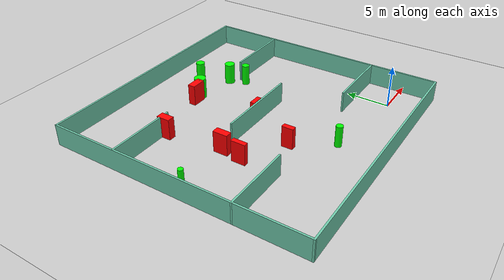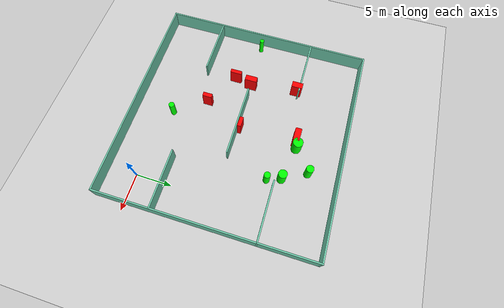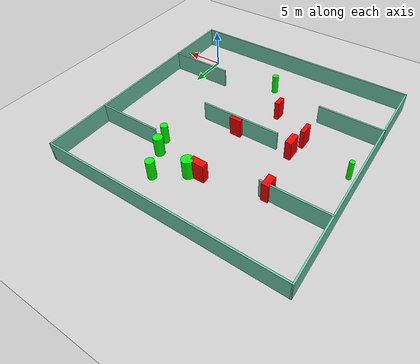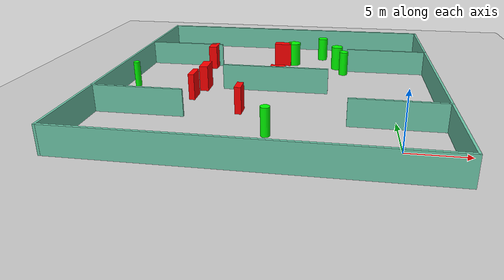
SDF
<sdf version="1.7">
 <world name="default">
  <light name="sun" type="directional">
   <pose>0 0 10 0 -0 0</pose>
   <diffuse>0.8 0.8 0.8 1</diffuse>
   <specular>0.2 0.2 0.2 1</specular>
   <attenuation>
    <range>1000</range>
    <constant>0.9</constant>
    <linear>0.01</linear>
    <quadratic>0.001</quadratic>
   </attenuation>
   <direction>-0.5 0.1 -0.9</direction>
   <spot><inner_angle>0</inner_angle><outer_angle>0</outer_angle><falloff>0</falloff></spot>
  </light>
  <model name="ground_plane">
   <static>1</static>
   <link name="link">
    <collision name="collision">
     <geometry><plane><normal>0 0 1</normal><size>100 100</size></plane></geometry>
     <surface>
      <contact><collide_bitmask>65535</collide_bitmask></contact>
      <friction><ode><mu>100</mu><mu2>50</mu2></ode></friction>
     </surface>
    </collision>
    <visual name="visual">
     <cast_shadows>0</cast_shadows>
     <geometry><plane><normal>0 0 1</normal><size>100 100</size></plane></geometry>
     <material>
      <script><uri>file://media/materials/scripts/gazebo.material</uri><name>Gazebo/Grey</name></script>
     </material>
    </visual>
   </link>
  </model>
  <gravity>0 0 -9.8</gravity>
  <magnetic_field>6e-06 2.3e-05 -4.2e-05</magnetic_field>
  <atmosphere type="adiabatic"/>
  <physics type="ode">
   <max_step_size>0.001</max_step_size>
   <real_time_factor>1</real_time_factor>
   <real_time_update_rate>1000</real_time_update_rate>
  </physics>
  <scene><ambient>0.4 0.4 0.4 1</ambient><background>0.7 0.7 0.7 1</background><shadows>1</shadows></scene>
  <spherical_coordinates>
   <surface_model>EARTH_WGS84</surface_model>
   <latitude_deg>0</latitude_deg>
   <longitude_deg>0</longitude_deg>
   <elevation>0</elevation>
   <heading_deg>0</heading_deg>
  </spherical_coordinates>
  <model name="my_base_walls">
   <link name="Wall_10">
    <collision name="Wall_10_Collision">
     <geometry><box><size>8.2 0.2 2.5</size></box></geometry>
     <pose>0 0 1.25 0 -0 0</pose>
    </collision>
    <visual name="Wall_10_Visual">
     <pose>0 0 1.25 0 -0 0</pose>
     <geometry><box><size>8.2 0.2 2.5</size></box></geometry>
     <material>
      <script><uri>file://media/materials/scripts/gazebo.material</uri><name>Gazebo/Grey</name></script>
      <ambient>0.435294 0.796078 0.67451 1</ambient>
     </material>
     <meta><layer>0</layer></meta>
    </visual>
    <pose>-11 -7 0 0 -0 0</pose>
   </link>
   <link name="Wall_12">
    <collision name="Wall_12_Collision">
     <geometry><box><size>8.2 0.2 2.5</size></box></geometry>
     <pose>0 0 1.25 0 -0 0</pose>
    </collision>
    <visual name="Wall_12_Visual">
     <pose>0 0 1.25 0 -0 0</pose>
     <geometry><box><size>8.2 0.2 2.5</size></box></geometry>
     <material>
      <script><uri>file://media/materials/scripts/gazebo.material</uri><name>Gazebo/Grey</name></script>
      <ambient>0.435294 0.796078 0.67451 1</ambient>
     </material>
     <meta><layer>0</layer></meta>
    </visual>
    <pose>-11 7 0 0 -0 0</pose>
   </link>
   <link name="Wall_14">
    <collision name="Wall_14_Collision">
     <geometry><box><size>8.2 0.2 2.5</size></box></geometry>
     <pose>0 0 1.25 0 -0 0</pose>
    </collision>
    <visual name="Wall_14_Visual">
     <pose>0 0 1.25 0 -0 0</pose>
     <geometry><box><size>8.2 0.2 2.5</size></box></geometry>
     <material>
      <script><uri>file://media/materials/scripts/gazebo.material</uri><name>Gazebo/Grey</name></script>
      <ambient>0.435294 0.796078 0.67451 1</ambient>
     </material>
     <meta><layer>0</layer></meta>
    </visual>
    <pose>11 7 0 0 -0 3.14159</pose>
   </link>
   <link name="Wall_16">
    <collision name="Wall_16_Collision">
     <geometry><box><size>10.2 0.2 2.5</size></box></geometry>
     <pose>0 0 1.25 0 -0 0</pose>
    </collision>
    <visual name="Wall_16_Visual">
     <pose>0 0 1.25 0 -0 0</pose>
     <geometry><box><size>10.2 0.2 2.5</size></box></geometry>
     <material>
      <script><uri>file://media/materials/scripts/gazebo.material</uri><name>Gazebo/Grey</name></script>
      <ambient>0.435294 0.796078 0.67451 1</ambient>
     </material>
     <meta><layer>0</layer></meta>
    </visual>
    <pose>0 0 0 0 -0 3.14159</pose>
   </link>
   <link name="Wall_2">
    <collision name="Wall_2_Collision">
     <geometry><box><size>30.2 0.2 2.5</size></box></geometry>
     <pose>0 0 1.25 0 -0 0</pose>
    </collision>
    <visual name="Wall_2_Visual">
     <pose>0 0 1.25 0 -0 0</pose>
     <geometry><box><size>30.2 0.2 2.5</size></box></geometry>
     <material>
      <script><uri>file://media/materials/scripts/gazebo.material</uri><name>Gazebo/Grey</name></script>
      <ambient>0.435294 0.796078 0.67451 1</ambient>
     </material>
     <meta><layer>0</layer></meta>
    </visual>
    <pose>0 -15 0 0 -0 3.14159</pose>
   </link>
   <link name="Wall_3">
    <collision name="Wall_3_Collision">
     <geometry><box><size>30.2 0.2 2.5</size></box></geometry>
     <pose>0 0 1.25 0 -0 0</pose>
    </collision>
    <visual name="Wall_3_Visual">
     <pose>0 0 1.25 0 -0 0</pose>
     <geometry><box><size>30.2 0.2 2.5</size></box></geometry>
     <material>
      <script><uri>file://media/materials/scripts/gazebo.material</uri><name>Gazebo/Grey</name></script>
      <ambient>0.435294 0.796078 0.67451 1</ambient>
     </material>
     <meta><layer>0</layer></meta>
    </visual>
    <pose>-15 0 0 0 -0 1.5708</pose>
   </link>
   <link name="Wall_4">
    <collision name="Wall_4_Collision">
     <geometry><box><size>30.2 0.2 2.5</size></box></geometry>
     <pose>0 0 1.25 0 -0 0</pose>
    </collision>
    <visual name="Wall_4_Visual">
     <pose>0 0 1.25 0 -0 0</pose>
     <geometry><box><size>30.2 0.2 2.5</size></box></geometry>
     <material>
      <script><uri>file://media/materials/scripts/gazebo.material</uri><name>Gazebo/Grey</name></script>
      <ambient>0.435294 0.796078 0.67451 1</ambient>
     </material>
     <meta><layer>0</layer></meta>
    </visual>
    <pose>0 15 0 0 -0 0</pose>
   </link>
   <link name="Wall_6">
    <collision name="Wall_6_Collision">
     <geometry><box><size>30.2 0.2 2.5</size></box></geometry>
     <pose>0 0 1.25 0 -0 0</pose>
    </collision>
    <visual name="Wall_6_Visual">
     <pose>0 0 1.25 0 -0 0</pose>
     <geometry><box><size>30.2 0.2 2.5</size></box></geometry>
     <material>
      <script><uri>file://media/materials/scripts/gazebo.material</uri><name>Gazebo/Grey</name></script>
      <ambient>0.435294 0.796078 0.67451 1</ambient>
     </material>
     <meta><layer>0</layer></meta>
    </visual>
    <pose>15 0 0 0 -0 1.5708</pose>
   </link>
   <link name="Wall_8">
    <collision name="Wall_8_Collision">
     <geometry><box><size>8.2 0.2 2.5</size></box></geometry>
     <pose>0 0 1.25 0 -0 0</pose>
    </collision>
    <visual name="Wall_8_Visual">
     <pose>0 0 1.25 0 -0 0</pose>
     <geometry><box><size>8.2 0.2 2.5</size></box></geometry>
     <material>
      <script><uri>file://media/materials/scripts/gazebo.material</uri><name>Gazebo/Grey</name></script>
      <ambient>0.435294 0.796078 0.67451 1</ambient>
     </material>
     <meta><layer>0</layer></meta>
    </visual>
    <pose>11 -7 0 0 -0 3.14159</pose>
   </link>
   <static>1</static>
   <pose>-11 11 0 0 -0 0</pose>
  </model>
  <model name="cylinder1">
   <static>1</static>
   <link name="link">
    <inertial>
     <mass>1</mass>
     <inertia><ixx>0.5</ixx><ixy>0</ixy><ixz>0</ixz><iyy>0.5</iyy><iyz>0</iyz><izz>1</izz></inertia>
    </inertial>
    <collision name="collision">
     <geometry><cylinder><radius>0.6964646748739128</radius><length>2.5</length></cylinder></geometry>
    </collision>
    <visual name="visual">
     <geometry><cylinder><radius>0.6964646748739128</radius><length>2.5</length></cylinder></geometry>
     <material>
      <ambient>0 1 0 1</ambient>
      <diffuse>0 1 0 1</diffuse>
      <specular>0.1 0.1 0.1 1</specular>
      <emissive>0 0 0 0</emissive>
     </material>
    </visual>
   </link>
   <pose>-10.049411396900176 19.728281119107006 1.25 0 0 0</pose>
  </model>
  <model name="cylinder2">
   <static>1</static>
   <link name="link">
    <inertial>
     <mass>1</mass>
     <inertia><ixx>0.5</ixx><ixy>0</ixy><ixz>0</ixz><iyy>0.5</iyy><iyz>0</iyz><izz>1</izz></inertia>
    </inertial>
    <collision name="collision">
     <geometry><cylinder><radius>0.30257006352979826</radius><length>2.5</length></cylinder></geometry>
    </collision>
    <visual name="visual">
     <geometry><cylinder><radius>0.30257006352979826</radius><length>2.5</length></cylinder></geometry>
     <material>
      <ambient>0 1 0 1</ambient>
      <diffuse>0 1 0 1</diffuse>
      <specular>0.1 0.1 0.1 1</specular>
      <emissive>0 0 0 0</emissive>
     </material>
    </visual>
   </link>
   <pose>-24.808275607641352 10.57370468200379 1.25 0 0 0</pose>
  </model>
  <model name="cylinder3">
   <static>1</static>
   <link name="link">
    <inertial>
     <mass>1</mass>
     <inertia><ixx>0.5</ixx><ixy>0</ixy><ixz>0</ixz><iyy>0.5</iyy><iyz>0</iyz><izz>1</izz></inertia>
    </inertial>
    <collision name="collision">
     <geometry><cylinder><radius>0.3972271126962691</radius><length>2.5</length></cylinder></geometry>
    </collision>
    <visual name="visual">
     <geometry><cylinder><radius>0.3972271126962691</radius><length>2.5</length></cylinder></geometry>
     <material>
      <ambient>0 1 0 1</ambient>
      <diffuse>0 1 0 1</diffuse>
      <specular>0.1 0.1 0.1 1</specular>
      <emissive>0 0 0 0</emissive>
     </material>
    </visual>
   </link>
   <pose>-10.382232790063338 1.3785342361103794 1.25 0 0 0</pose>
  </model>
  <model name="cylinder4">
   <static>1</static>
   <link name="link">
    <inertial>
     <mass>1</mass>
     <inertia><ixx>0.5</ixx><ixy>0</ixy><ixz>0</ixz><iyy>0.5</iyy><iyz>0</iyz><izz>1</izz></inertia>
    </inertial>
    <collision name="collision">
     <geometry><cylinder><radius>0.5191008460941771</radius><length>2.5</length></cylinder></geometry>
    </collision>
    <visual name="visual">
     <geometry><cylinder><radius>0.5191008460941771</radius><length>2.5</length></cylinder></geometry>
     <material>
      <ambient>0 1 0 1</ambient>
      <diffuse>0 1 0 1</diffuse>
      <specular>0.1 0.1 0.1 1</specular>
      <emissive>0 0 0 0</emissive>
     </material>
    </visual>
   </link>
   <pose>-6.898429064785791 22.080959345246335 1.25 0 0 0</pose>
  </model>
  <model name="cylinder5">
   <static>1</static>
   <link name="link">
    <inertial>
     <mass>1</mass>
     <inertia><ixx>0.5</ixx><ixy>0</ixy><ixz>0</ixz><iyy>0.5</iyy><iyz>0</iyz><izz>1</izz></inertia>
    </inertial>
    <collision name="collision">
     <geometry><cylinder><radius>0.440216326552048</radius><length>2.5</length></cylinder></geometry>
    </collision>
    <visual name="visual">
     <geometry><cylinder><radius>0.440216326552048</radius><length>2.5</length></cylinder></geometry>
     <material>
      <ambient>0 1 0 1</ambient>
      <diffuse>0 1 0 1</diffuse>
      <specular>0.1 0.1 0.1 1</specular>
      <emissive>0 0 0 0</emissive>
     </material>
    </visual>
   </link>
   <pose>-4.4636265243475215 16.961197302169175 1.25 0 0 0</pose>
  </model>
  <model name="cylinder6">
   <static>1</static>
   <link name="link">
    <inertial>
     <mass>1</mass>
     <inertia><ixx>0.5</ixx><ixy>0</ixy><ixz>0</ixz><iyy>0.5</iyy><iyz>0</iyz><izz>1</izz></inertia>
    </inertial>
    <collision name="collision">
     <geometry><cylinder><radius>0.597205281875574</radius><length>2.5</length></cylinder></geometry>
    </collision>
    <visual name="visual">
     <geometry><cylinder><radius>0.597205281875574</radius><length>2.5</length></cylinder></geometry>
     <material>
      <ambient>0 1 0 1</ambient>
      <diffuse>0 1 0 1</diffuse>
      <specular>0.1 0.1 0.1 1</specular>
      <emissive>0 0 0 0</emissive>
     </material>
    </visual>
   </link>
   <pose>-5.194237769817484 18.85257663669802 1.25 0 0 0</pose>
  </model>
  <model name="box1">
   <static>1</static>
   <link name="link">
    <inertial>
     <mass>1</mass>
     <inertia><ixx>0.083</ixx><ixy>0</ixy><ixz>0</ixz><iyy>0.083</iyy><iyz>0</iyz><izz>0.083</izz></inertia>
    </inertial>
    <collision name="collision">
     <geometry><box><size>1.7980748761864644 0.8760397318230619 2.5</size></box></geometry>
    </collision>
    <visual name="visual">
     <geometry><box><size>1.7980748761864644 0.8760397318230619 2.5</size></box></geometry>
     <material>
      <ambient>1 0 0 1</ambient>
      <diffuse>1 0 0 1</diffuse>
      <specular>0.1 0.1 0.1 1</specular>
      <emissive>0 0 0 0</emissive>
     </material>
    </visual>
    <sensor name="my_contact" type="contact">
     <contact><collision>box_collision</collision><topic>__default_topic__</topic></contact>
    </sensor>
   </link>
   <pose>-11.22688181472197 19.382100604960442 1.25 0 0 0</pose>
  </model>
  <model name="box2">
   <static>1</static>
   <link name="link">
    <inertial>
     <mass>1</mass>
     <inertia><ixx>0.083</ixx><ixy>0</ixy><ixz>0</ixz><iyy>0.083</iyy><iyz>0</iyz><izz>0.083</izz></inertia>
    </inertial>
    <collision name="collision">
     <geometry><box><size>1.4287689401888732 0.5288407324688326 2.5</size></box></geometry>
    </collision>
    <visual name="visual">
     <geometry><box><size>1.4287689401888732 0.5288407324688326 2.5</size></box></geometry>
     <material>
      <ambient>1 0 0 1</ambient>
      <diffuse>1 0 0 1</diffuse>
      <specular>0.1 0.1 0.1 1</specular>
      <emissive>0 0 0 0</emissive>
     </material>
    </visual>
    <sensor name="my_contact" type="contact">
     <contact><collision>box_collision</collision><topic>__default_topic__</topic></contact>
    </sensor>
   </link>
   <pose>-10.742276556860247 11.41225092828794 1.25 0 0 0</pose>
  </model>
  <model name="box3">
   <static>1</static>
   <link name="link">
    <inertial>
     <mass>1</mass>
     <inertia><ixx>0.083</ixx><ixy>0</ixy><ixz>0</ixz><iyy>0.083</iyy><iyz>0</iyz><izz>0.083</izz></inertia>
    </inertial>
    <collision name="collision">
     <geometry><box><size>0.8136079690389308 1.719654658287914 2.5</size></box></geometry>
    </collision>
    <visual name="visual">
     <geometry><box><size>0.8136079690389308 1.719654658287914 2.5</size></box></geometry>
     <material>
      <ambient>1 0 0 1</ambient>
      <diffuse>1 0 0 1</diffuse>
      <specular>0.1 0.1 0.1 1</specular>
      <emissive>0 0 0 0</emissive>
     </material>
    </visual>
    <sensor name="my_contact" type="contact">
     <contact><collision>box_collision</collision><topic>__default_topic__</topic></contact>
    </sensor>
   </link>
   <pose>-17.838714984180694 10.900795391666655 1.25 0 0 0</pose>
  </model>
  <model name="box4">
   <static>1</static>
   <link name="link">
    <inertial>
     <mass>1</mass>
     <inertia><ixx>0.083</ixx><ixy>0</ixy><ixz>0</ixz><iyy>0.083</iyy><iyz>0</iyz><izz>0.083</izz></inertia>
    </inertial>
    <collision name="collision">
     <geometry><box><size>0.5820081016799341 1.3389223923473264 2.5</size></box></geometry>
    </collision>
    <visual name="visual">
     <geometry><box><size>0.5820081016799341 1.3389223923473264 2.5</size></box></geometry>
     <material>
      <ambient>1 0 0 1</ambient>
      <diffuse>1 0 0 1</diffuse>
      <specular>0.1 0.1 0.1 1</specular>
      <emissive>0 0 0 0</emissive>
     </material>
    </visual>
    <sensor name="my_contact" type="contact">
     <contact><collision>box_collision</collision><topic>__default_topic__</topic></contact>
    </sensor>
   </link>
   <pose>-13.373735971112215 5.699823902640762 1.25 0 0 0</pose>
  </model>
  <model name="box5">
   <static>1</static>
   <link name="link">
    <inertial>
     <mass>1</mass>
     <inertia><ixx>0.083</ixx><ixy>0</ixy><ixz>0</ixz><iyy>0.083</iyy><iyz>0</iyz><izz>0.083</izz></inertia>
    </inertial>
    <collision name="collision">
     <geometry><box><size>0.5369248033757822 1.6621297138455131 2.5</size></box></geometry>
    </collision>
    <visual name="visual">
     <geometry><box><size>0.5369248033757822 1.6621297138455131 2.5</size></box></geometry>
     <material>
      <ambient>1 0 0 1</ambient>
      <diffuse>1 0 0 1</diffuse>
      <specular>0.1 0.1 0.1 1</specular>
      <emissive>0 0 0 0</emissive>
     </material>
    </visual>
    <sensor name="my_contact" type="contact">
     <contact><collision>box_collision</collision><topic>__default_topic__</topic></contact>
    </sensor>
   </link>
   <pose>-18.319913935896093 8.470312811198166 1.25 0 0 0</pose>
  </model>
  <model name="box6">
   <static>1</static>
   <link name="link">
    <inertial>
     <mass>1</mass>
     <inertia><ixx>0.083</ixx><ixy>0</ixy><ixz>0</ixz><iyy>0.083</iyy><iyz>0</iyz><izz>0.083</izz></inertia>
    </inertial>
    <collision name="collision">
     <geometry><box><size>0.8677234607678863 1.5525398986429173 2.5</size></box></geometry>
    </collision>
    <visual name="visual">
     <geometry><box><size>0.8677234607678863 1.5525398986429173 2.5</size></box></geometry>
     <material>
      <ambient>1 0 0 1</ambient>
      <diffuse>1 0 0 1</diffuse>
      <specular>0.1 0.1 0.1 1</specular>
      <emissive>0 0 0 0</emissive>
     </material>
    </visual>
    <sensor name="my_contact" type="contact">
     <contact><collision>box_collision</collision><topic>__default_topic__</topic></contact>
    </sensor>
   </link>
   <pose>-18.755277021427926 17.585647444458765 1.25 0 0 0</pose>
  </model>
 </world>
</sdf>
